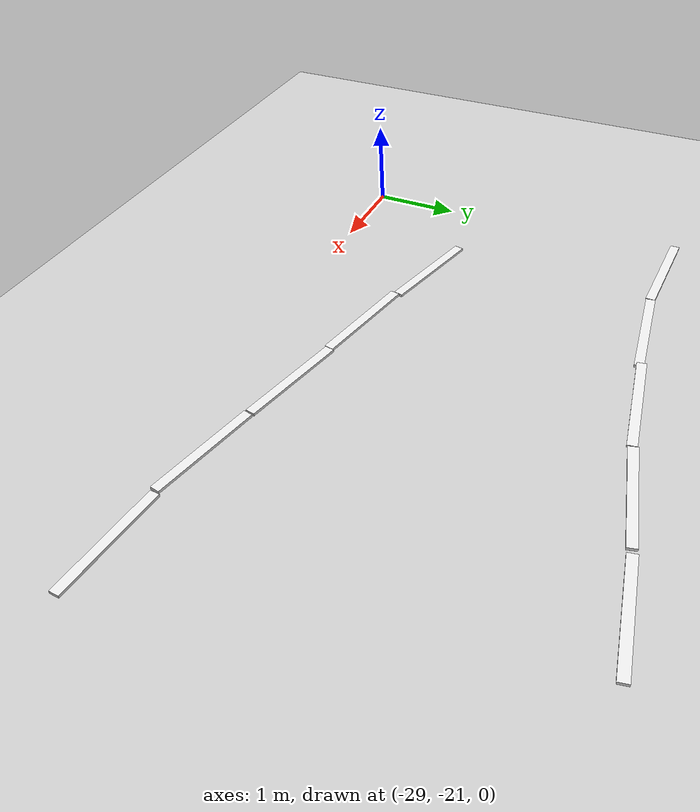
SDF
<sdf version="1.7">
 <world name="default">
  <model name="ground_plane">
   <static>1</static>
   <link name="link">
    <collision name="collision">
     <geometry><plane><normal>0 0 1</normal><size>100 100</size></plane></geometry>
     <surface><friction><ode><mu>100</mu><mu2>50</mu2></ode></friction></surface>
    </collision>
    <visual name="visual">
     <cast_shadows>0</cast_shadows>
     <geometry><plane><normal>0 0 1</normal><size>100 100</size></plane></geometry>
     <material>
      <script><uri>file://media/materials/scripts/gazebo.material</uri><name>Gazebo/Grey</name></script>
     </material>
    </visual>
   </link>
  </model>
  <model name="road_way_0_clone_0_clone_clone_0_clone_clone_clone_clone_clone_clone_clone_clone_0_clone_clone_0">
   <link name="link">
    <inertial>
     <mass>1</mass>
     <inertia>
      <ixx>0.166667</ixx>
      <ixy>0</ixy>
      <ixz>0</ixz>
      <iyy>0.166667</iyy>
      <iyz>0</iyz>
      <izz>0.166667</izz>
     </inertia>
    </inertial>
    <visual name="visual">
     <geometry><box><size>0.106644 1.22348 0.03129</size></box></geometry>
     <material>
      <script><name>Gazebo/White</name><uri>file://media/materials/scripts/gazebo.material</uri></script>
      <shader type="pixel"><normal_map>__default__</normal_map></shader>
      <ambient>1 1 1 1</ambient>
      <diffuse>1 1 1 1</diffuse>
      <specular>0 0 0 1</specular>
      <emissive>0 0 0 1</emissive>
     </material>
    </visual>
    <collision name="collision">
     <geometry><box><size>0.10644 1.22348 0.03129</size></box></geometry>
     <surface>
      <friction>
       <ode><mu>1</mu><mu2>1</mu2><fdir1>0 0 0</fdir1><slip1>0</slip1><slip2>0</slip2></ode>
       <torsional>
        <coefficient>1</coefficient>
        <patch_radius>0</patch_radius>
        <surface_radius>0</surface_radius>
        <use_patch_radius>1</use_patch_radius>
        <ode><slip>0</slip></ode>
       </torsional>
      </friction>
      <bounce><restitution_coefficient>0</restitution_coefficient><threshold>1e+06</threshold></bounce>
      <contact>
       <collide_without_contact>0</collide_without_contact>
       <collide_without_contact_bitmask>1</collide_without_contact_bitmask>
       <collide_bitmask>1</collide_bitmask>
       <ode>
        <soft_cfm>0</soft_cfm>
        <soft_erp>0.2</soft_erp>
        <kp>1e+13</kp>
        <kd>1</kd>
        <max_vel>0.01</max_vel>
        <min_depth>0</min_depth>
       </ode>
       <bullet>
        <split_impulse>1</split_impulse>
        <split_impulse_penetration_threshold>-0.01</split_impulse_penetration_threshold>
        <soft_cfm>0</soft_cfm>
        <soft_erp>0.2</soft_erp>
        <kp>1e+13</kp>
        <kd>1</kd>
       </bullet>
      </contact>
     </surface>
    </collision>
   </link>
   <static>0</static>
   <pose>-28.6161 -17.1248 0.015532 0.000274 2.4e-05 1.53008</pose>
  </model>
  <model name="road_way_0_clone_0_clone_clone_0_clone_clone_clone_clone_clone_clone_clone_clone_0_clone_clone_0_clone_clone">
   <link name="link">
    <inertial>
     <mass>1</mass>
     <inertia>
      <ixx>0.166667</ixx>
      <ixy>0</ixy>
      <ixz>0</ixz>
      <iyy>0.166667</iyy>
      <iyz>0</iyz>
      <izz>0.166667</izz>
     </inertia>
    </inertial>
    <visual name="visual">
     <geometry><box><size>0.106644 1.22348 0.03129</size></box></geometry>
     <material>
      <script><name>Gazebo/White</name><uri>file://media/materials/scripts/gazebo.material</uri></script>
      <shader type="pixel"><normal_map>__default__</normal_map></shader>
      <ambient>1 1 1 1</ambient>
      <diffuse>1 1 1 1</diffuse>
      <specular>0 0 0 1</specular>
      <emissive>0 0 0 1</emissive>
     </material>
    </visual>
    <collision name="collision">
     <geometry><box><size>0.10644 1.22348 0.03129</size></box></geometry>
     <surface>
      <friction>
       <ode><mu>1</mu><mu2>1</mu2><fdir1>0 0 0</fdir1><slip1>0</slip1><slip2>0</slip2></ode>
       <torsional>
        <coefficient>1</coefficient>
        <patch_radius>0</patch_radius>
        <surface_radius>0</surface_radius>
        <use_patch_radius>1</use_patch_radius>
        <ode><slip>0</slip></ode>
       </torsional>
      </friction>
      <bounce><restitution_coefficient>0</restitution_coefficient><threshold>1e+06</threshold></bounce>
      <contact>
       <collide_without_contact>0</collide_without_contact>
       <collide_without_contact_bitmask>1</collide_without_contact_bitmask>
       <collide_bitmask>1</collide_bitmask>
       <ode>
        <soft_cfm>0</soft_cfm>
        <soft_erp>0.2</soft_erp>
        <kp>1e+13</kp>
        <kd>1</kd>
        <max_vel>0.01</max_vel>
        <min_depth>0</min_depth>
       </ode>
       <bullet>
        <split_impulse>1</split_impulse>
        <split_impulse_penetration_threshold>-0.01</split_impulse_penetration_threshold>
        <soft_cfm>0</soft_cfm>
        <soft_erp>0.2</soft_erp>
        <kp>1e+13</kp>
        <kd>1</kd>
       </bullet>
      </contact>
     </surface>
    </collision>
   </link>
   <static>0</static>
   <pose>-27.5876 -19.7271 0.015638 -1.1e-05 0 1.32352</pose>
  </model>
  <model name="road_way_0_clone_0_clone_clone_0_clone_clone_clone_clone_clone_clone_clone_clone_0_clone_clone_0_clone_0">
   <link name="link">
    <inertial>
     <mass>1</mass>
     <inertia>
      <ixx>0.166667</ixx>
      <ixy>0</ixy>
      <ixz>0</ixz>
      <iyy>0.166667</iyy>
      <iyz>0</iyz>
      <izz>0.166667</izz>
     </inertia>
    </inertial>
    <visual name="visual">
     <geometry><box><size>0.106644 1.22348 0.03129</size></box></geometry>
     <material>
      <script><name>Gazebo/White</name><uri>file://media/materials/scripts/gazebo.material</uri></script>
      <shader type="pixel"><normal_map>__default__</normal_map></shader>
      <ambient>1 1 1 1</ambient>
      <diffuse>1 1 1 1</diffuse>
      <specular>0 0 0 1</specular>
      <emissive>0 0 0 1</emissive>
     </material>
    </visual>
    <collision name="collision">
     <geometry><box><size>0.10644 1.22348 0.03129</size></box></geometry>
     <surface>
      <friction>
       <ode><mu>1</mu><mu2>1</mu2><fdir1>0 0 0</fdir1><slip1>0</slip1><slip2>0</slip2></ode>
       <torsional>
        <coefficient>1</coefficient>
        <patch_radius>0</patch_radius>
        <surface_radius>0</surface_radius>
        <use_patch_radius>1</use_patch_radius>
        <ode><slip>0</slip></ode>
       </torsional>
      </friction>
      <bounce><restitution_coefficient>0</restitution_coefficient><threshold>1e+06</threshold></bounce>
      <contact>
       <collide_without_contact>0</collide_without_contact>
       <collide_without_contact_bitmask>1</collide_without_contact_bitmask>
       <collide_bitmask>1</collide_bitmask>
       <ode>
        <soft_cfm>0</soft_cfm>
        <soft_erp>0.2</soft_erp>
        <kp>1e+13</kp>
        <kd>1</kd>
        <max_vel>0.01</max_vel>
        <min_depth>0</min_depth>
       </ode>
       <bullet>
        <split_impulse>1</split_impulse>
        <split_impulse_penetration_threshold>-0.01</split_impulse_penetration_threshold>
        <soft_cfm>0</soft_cfm>
        <soft_erp>0.2</soft_erp>
        <kp>1e+13</kp>
        <kd>1</kd>
       </bullet>
      </contact>
     </surface>
    </collision>
   </link>
   <static>0</static>
   <pose>-27.3894 -17.0768 0.015212 0.000976 8.5e-05 1.68193</pose>
  </model>
  <model name="road_way_0_clone_0_clone_clone_0_clone_clone_clone_clone_clone_clone_clone_clone_0_clone_clone_0_clone_0_clone">
   <link name="link">
    <inertial>
     <mass>1</mass>
     <inertia>
      <ixx>0.166667</ixx>
      <ixy>0</ixy>
      <ixz>0</ixz>
      <iyy>0.166667</iyy>
      <iyz>0</iyz>
      <izz>0.166667</izz>
     </inertia>
    </inertial>
    <visual name="visual">
     <geometry><box><size>0.106644 1.22348 0.03129</size></box></geometry>
     <material>
      <script><name>Gazebo/White</name><uri>file://media/materials/scripts/gazebo.material</uri></script>
      <shader type="pixel"><normal_map>__default__</normal_map></shader>
      <ambient>1 1 1 1</ambient>
      <diffuse>1 1 1 1</diffuse>
      <specular>0 0 0 1</specular>
      <emissive>0 0 0 1</emissive>
     </material>
    </visual>
    <collision name="collision">
     <geometry><box><size>0.10644 1.22348 0.03129</size></box></geometry>
     <surface>
      <friction>
       <ode><mu>1</mu><mu2>1</mu2><fdir1>0 0 0</fdir1><slip1>0</slip1><slip2>0</slip2></ode>
       <torsional>
        <coefficient>1</coefficient>
        <patch_radius>0</patch_radius>
        <surface_radius>0</surface_radius>
        <use_patch_radius>1</use_patch_radius>
        <ode><slip>0</slip></ode>
       </torsional>
      </friction>
      <bounce><restitution_coefficient>0</restitution_coefficient><threshold>1e+06</threshold></bounce>
      <contact>
       <collide_without_contact>0</collide_without_contact>
       <collide_without_contact_bitmask>1</collide_without_contact_bitmask>
       <collide_bitmask>1</collide_bitmask>
       <ode>
        <soft_cfm>0</soft_cfm>
        <soft_erp>0.2</soft_erp>
        <kp>1e+13</kp>
        <kd>1</kd>
        <max_vel>0.01</max_vel>
        <min_depth>0</min_depth>
       </ode>
       <bullet>
        <split_impulse>1</split_impulse>
        <split_impulse_penetration_threshold>-0.01</split_impulse_penetration_threshold>
        <soft_cfm>0</soft_cfm>
        <soft_erp>0.2</soft_erp>
        <kp>1e+13</kp>
        <kd>1</kd>
       </bullet>
      </contact>
     </surface>
    </collision>
   </link>
   <static>0</static>
   <pose>-26.1944 -16.8985 0.030971 0.025096 -1e-05 1.7166</pose>
  </model>
  <model name="road_way_0_clone_0_clone_clone_0_clone_clone_clone_clone_clone_clone_clone_clone_0_clone_clone_0_clone_clone_clone">
   <link name="link">
    <inertial>
     <mass>1</mass>
     <inertia>
      <ixx>0.166667</ixx>
      <ixy>0</ixy>
      <ixz>0</ixz>
      <iyy>0.166667</iyy>
      <iyz>0</iyz>
      <izz>0.166667</izz>
     </inertia>
    </inertial>
    <visual name="visual">
     <geometry><box><size>0.106644 1.22348 0.03129</size></box></geometry>
     <material>
      <script><name>Gazebo/White</name><uri>file://media/materials/scripts/gazebo.material</uri></script>
      <shader type="pixel"><normal_map>__default__</normal_map></shader>
      <ambient>1 1 1 1</ambient>
      <diffuse>1 1 1 1</diffuse>
      <specular>0 0 0 1</specular>
      <emissive>0 0 0 1</emissive>
     </material>
    </visual>
    <collision name="collision">
     <geometry><box><size>0.10644 1.22348 0.03129</size></box></geometry>
     <surface>
      <friction>
       <ode><mu>1</mu><mu2>1</mu2><fdir1>0 0 0</fdir1><slip1>0</slip1><slip2>0</slip2></ode>
       <torsional>
        <coefficient>1</coefficient>
        <patch_radius>0</patch_radius>
        <surface_radius>0</surface_radius>
        <use_patch_radius>1</use_patch_radius>
        <ode><slip>0</slip></ode>
       </torsional>
      </friction>
      <bounce><restitution_coefficient>0</restitution_coefficient><threshold>1e+06</threshold></bounce>
      <contact>
       <collide_without_contact>0</collide_without_contact>
       <collide_without_contact_bitmask>1</collide_without_contact_bitmask>
       <collide_bitmask>1</collide_bitmask>
       <ode>
        <soft_cfm>0</soft_cfm>
        <soft_erp>0.2</soft_erp>
        <kp>1e+13</kp>
        <kd>1</kd>
        <max_vel>0.01</max_vel>
        <min_depth>0</min_depth>
       </ode>
       <bullet>
        <split_impulse>1</split_impulse>
        <split_impulse_penetration_threshold>-0.01</split_impulse_penetration_threshold>
        <soft_cfm>0</soft_cfm>
        <soft_erp>0.2</soft_erp>
        <kp>1e+13</kp>
        <kd>1</kd>
       </bullet>
      </contact>
     </surface>
    </collision>
   </link>
   <static>0</static>
   <pose>-26.3998 -20.0375 0.015638 -1.1e-05 -0 1.37004</pose>
  </model>
  <model name="road_way_0_clone_0_clone_clone_0_clone_clone_clone_clone_clone_clone_clone_clone_0_clone_clone_0_clone_clone_clone_clone">
   <link name="link">
    <inertial>
     <mass>1</mass>
     <inertia>
      <ixx>0.166667</ixx>
      <ixy>0</ixy>
      <ixz>0</ixz>
      <iyy>0.166667</iyy>
      <iyz>0</iyz>
      <izz>0.166667</izz>
     </inertia>
    </inertial>
    <visual name="visual">
     <geometry><box><size>0.106644 1.22348 0.03129</size></box></geometry>
     <material>
      <script><name>Gazebo/White</name><uri>file://media/materials/scripts/gazebo.material</uri></script>
      <shader type="pixel"><normal_map>__default__</normal_map></shader>
      <ambient>1 1 1 1</ambient>
      <diffuse>1 1 1 1</diffuse>
      <specular>0 0 0 1</specular>
      <emissive>0 0 0 1</emissive>
     </material>
    </visual>
    <collision name="collision">
     <geometry><box><size>0.10644 1.22348 0.03129</size></box></geometry>
     <surface>
      <friction>
       <ode><mu>1</mu><mu2>1</mu2><fdir1>0 0 0</fdir1><slip1>0</slip1><slip2>0</slip2></ode>
       <torsional>
        <coefficient>1</coefficient>
        <patch_radius>0</patch_radius>
        <surface_radius>0</surface_radius>
        <use_patch_radius>1</use_patch_radius>
        <ode><slip>0</slip></ode>
       </torsional>
      </friction>
      <bounce><restitution_coefficient>0</restitution_coefficient><threshold>1e+06</threshold></bounce>
      <contact>
       <collide_without_contact>0</collide_without_contact>
       <collide_without_contact_bitmask>1</collide_without_contact_bitmask>
       <collide_bitmask>1</collide_bitmask>
       <ode>
        <soft_cfm>0</soft_cfm>
        <soft_erp>0.2</soft_erp>
        <kp>1e+13</kp>
        <kd>1</kd>
        <max_vel>0.01</max_vel>
        <min_depth>0</min_depth>
       </ode>
       <bullet>
        <split_impulse>1</split_impulse>
        <split_impulse_penetration_threshold>-0.01</split_impulse_penetration_threshold>
        <soft_cfm>0</soft_cfm>
        <soft_erp>0.2</soft_erp>
        <kp>1e+13</kp>
        <kd>1</kd>
       </bullet>
      </contact>
     </surface>
    </collision>
   </link>
   <static>0</static>
   <pose>-25.1965 -20.2771 0.015638 -1.1e-05 -0 1.35065</pose>
  </model>
  <model name="road_way_0_clone_0_clone_clone_0_clone_clone_clone_clone_clone_clone_clone_clone_0_clone_clone_0_clone_0_clone_clone">
   <link name="link">
    <inertial>
     <mass>1</mass>
     <inertia>
      <ixx>0.166667</ixx>
      <ixy>0</ixy>
      <ixz>0</ixz>
      <iyy>0.166667</iyy>
      <iyz>0</iyz>
      <izz>0.166667</izz>
     </inertia>
    </inertial>
    <visual name="visual">
     <geometry><box><size>0.106644 1.22348 0.03129</size></box></geometry>
     <material>
      <script><name>Gazebo/White</name><uri>file://media/materials/scripts/gazebo.material</uri></script>
      <shader type="pixel"><normal_map>__default__</normal_map></shader>
      <ambient>1 1 1 1</ambient>
      <diffuse>1 1 1 1</diffuse>
      <specular>0 0 0 1</specular>
      <emissive>0 0 0 1</emissive>
     </material>
    </visual>
    <collision name="collision">
     <geometry><box><size>0.10644 1.22348 0.03129</size></box></geometry>
     <surface>
      <friction>
       <ode><mu>1</mu><mu2>1</mu2><fdir1>0 0 0</fdir1><slip1>0</slip1><slip2>0</slip2></ode>
       <torsional>
        <coefficient>1</coefficient>
        <patch_radius>0</patch_radius>
        <surface_radius>0</surface_radius>
        <use_patch_radius>1</use_patch_radius>
        <ode><slip>0</slip></ode>
       </torsional>
      </friction>
      <bounce><restitution_coefficient>0</restitution_coefficient><threshold>1e+06</threshold></bounce>
      <contact>
       <collide_without_contact>0</collide_without_contact>
       <collide_without_contact_bitmask>1</collide_without_contact_bitmask>
       <collide_bitmask>1</collide_bitmask>
       <ode>
        <soft_cfm>0</soft_cfm>
        <soft_erp>0.2</soft_erp>
        <kp>1e+13</kp>
        <kd>1</kd>
        <max_vel>0.01</max_vel>
        <min_depth>0</min_depth>
       </ode>
       <bullet>
        <split_impulse>1</split_impulse>
        <split_impulse_penetration_threshold>-0.01</split_impulse_penetration_threshold>
        <soft_cfm>0</soft_cfm>
        <soft_erp>0.2</soft_erp>
        <kp>1e+13</kp>
        <kd>1</kd>
       </bullet>
      </contact>
     </surface>
    </collision>
   </link>
   <static>0</static>
   <pose>-24.9858 -16.6666 0.015638 -1.1e-05 -0 1.7867</pose>
  </model>
  <model name="road_way_0_clone_0_clone_clone_0_clone_clone_clone_clone_clone_clone_clone_clone_0_clone_clone_0_clone_clone_clone_clone_clone">
   <link name="link">
    <inertial>
     <mass>1</mass>
     <inertia>
      <ixx>0.166667</ixx>
      <ixy>0</ixy>
      <ixz>0</ixz>
      <iyy>0.166667</iyy>
      <iyz>0</iyz>
      <izz>0.166667</izz>
     </inertia>
    </inertial>
    <visual name="visual">
     <geometry><box><size>0.106644 1.22348 0.03129</size></box></geometry>
     <material>
      <script><name>Gazebo/White</name><uri>file://media/materials/scripts/gazebo.material</uri></script>
      <shader type="pixel"><normal_map>__default__</normal_map></shader>
      <ambient>1 1 1 1</ambient>
      <diffuse>1 1 1 1</diffuse>
      <specular>0 0 0 1</specular>
      <emissive>0 0 0 1</emissive>
     </material>
    </visual>
    <collision name="collision">
     <geometry><box><size>0.10644 1.22348 0.03129</size></box></geometry>
     <surface>
      <friction>
       <ode><mu>1</mu><mu2>1</mu2><fdir1>0 0 0</fdir1><slip1>0</slip1><slip2>0</slip2></ode>
       <torsional>
        <coefficient>1</coefficient>
        <patch_radius>0</patch_radius>
        <surface_radius>0</surface_radius>
        <use_patch_radius>1</use_patch_radius>
        <ode><slip>0</slip></ode>
       </torsional>
      </friction>
      <bounce><restitution_coefficient>0</restitution_coefficient><threshold>1e+06</threshold></bounce>
      <contact>
       <collide_without_contact>0</collide_without_contact>
       <collide_without_contact_bitmask>1</collide_without_contact_bitmask>
       <collide_bitmask>1</collide_bitmask>
       <ode>
        <soft_cfm>0</soft_cfm>
        <soft_erp>0.2</soft_erp>
        <kp>1e+13</kp>
        <kd>1</kd>
        <max_vel>0.01</max_vel>
        <min_depth>0</min_depth>
       </ode>
       <bullet>
        <split_impulse>1</split_impulse>
        <split_impulse_penetration_threshold>-0.01</split_impulse_penetration_threshold>
        <soft_cfm>0</soft_cfm>
        <soft_erp>0.2</soft_erp>
        <kp>1e+13</kp>
        <kd>1</kd>
       </bullet>
      </contact>
     </surface>
    </collision>
   </link>
   <static>0</static>
   <pose>-23.9861 -20.5458 0.015638 -1.1e-05 0 1.36378</pose>
  </model>
  <model name="road_way_0_clone_0_clone_clone_0_clone_clone_clone_clone_clone_clone_clone_clone_0_clone_clone_0_clone_0_clone_clone_clone">
   <link name="link">
    <inertial>
     <mass>1</mass>
     <inertia>
      <ixx>0.166667</ixx>
      <ixy>0</ixy>
      <ixz>0</ixz>
      <iyy>0.166667</iyy>
      <iyz>0</iyz>
      <izz>0.166667</izz>
     </inertia>
    </inertial>
    <visual name="visual">
     <geometry><box><size>0.106644 1.22348 0.03129</size></box></geometry>
     <material>
      <script><name>Gazebo/White</name><uri>file://media/materials/scripts/gazebo.material</uri></script>
      <shader type="pixel"><normal_map>__default__</normal_map></shader>
      <ambient>1 1 1 1</ambient>
      <diffuse>1 1 1 1</diffuse>
      <specular>0 0 0 1</specular>
      <emissive>0 0 0 1</emissive>
     </material>
    </visual>
    <collision name="collision">
     <geometry><box><size>0.10644 1.22348 0.03129</size></box></geometry>
     <surface>
      <friction>
       <ode><mu>1</mu><mu2>1</mu2><fdir1>0 0 0</fdir1><slip1>0</slip1><slip2>0</slip2></ode>
       <torsional>
        <coefficient>1</coefficient>
        <patch_radius>0</patch_radius>
        <surface_radius>0</surface_radius>
        <use_patch_radius>1</use_patch_radius>
        <ode><slip>0</slip></ode>
       </torsional>
      </friction>
      <bounce><restitution_coefficient>0</restitution_coefficient><threshold>1e+06</threshold></bounce>
      <contact>
       <collide_without_contact>0</collide_without_contact>
       <collide_without_contact_bitmask>1</collide_without_contact_bitmask>
       <collide_bitmask>1</collide_bitmask>
       <ode>
        <soft_cfm>0</soft_cfm>
        <soft_erp>0.2</soft_erp>
        <kp>1e+13</kp>
        <kd>1</kd>
        <max_vel>0.01</max_vel>
        <min_depth>0</min_depth>
       </ode>
       <bullet>
        <split_impulse>1</split_impulse>
        <split_impulse_penetration_threshold>-0.01</split_impulse_penetration_threshold>
        <soft_cfm>0</soft_cfm>
        <soft_erp>0.2</soft_erp>
        <kp>1e+13</kp>
        <kd>1</kd>
       </bullet>
      </contact>
     </surface>
    </collision>
   </link>
   <static>0</static>
   <pose>-23.7357 -16.4178 0.015638 1.1e-05 -0 1.73991</pose>
  </model>
  <model name="road_way_0_clone_0_clone_clone_0_clone_clone_clone_clone_clone_clone_clone_clone_0_clone_clone_0_clone_clone_clone_clone_clone_clone">
   <link name="link">
    <inertial>
     <mass>1</mass>
     <inertia>
      <ixx>0.166667</ixx>
      <ixy>0</ixy>
      <ixz>0</ixz>
      <iyy>0.166667</iyy>
      <iyz>0</iyz>
      <izz>0.166667</izz>
     </inertia>
    </inertial>
    <visual name="visual">
     <geometry><box><size>0.106644 1.22348 0.03129</size></box></geometry>
     <material>
      <script><name>Gazebo/White</name><uri>file://media/materials/scripts/gazebo.material</uri></script>
      <shader type="pixel"><normal_map>__default__</normal_map></shader>
      <ambient>1 1 1 1</ambient>
      <diffuse>1 1 1 1</diffuse>
      <specular>0 0 0 1</specular>
      <emissive>0 0 0 1</emissive>
     </material>
    </visual>
    <collision name="collision">
     <geometry><box><size>0.10644 1.22348 0.03129</size></box></geometry>
     <surface>
      <friction>
       <ode><mu>1</mu><mu2>1</mu2><fdir1>0 0 0</fdir1><slip1>0</slip1><slip2>0</slip2></ode>
       <torsional>
        <coefficient>1</coefficient>
        <patch_radius>0</patch_radius>
        <surface_radius>0</surface_radius>
        <use_patch_radius>1</use_patch_radius>
        <ode><slip>0</slip></ode>
       </torsional>
      </friction>
      <bounce><restitution_coefficient>0</restitution_coefficient><threshold>1e+06</threshold></bounce>
      <contact>
       <collide_without_contact>0</collide_without_contact>
       <collide_without_contact_bitmask>1</collide_without_contact_bitmask>
       <collide_bitmask>1</collide_bitmask>
       <ode>
        <soft_cfm>0</soft_cfm>
        <soft_erp>0.2</soft_erp>
        <kp>1e+13</kp>
        <kd>1</kd>
        <max_vel>0.01</max_vel>
        <min_depth>0</min_depth>
       </ode>
       <bullet>
        <split_impulse>1</split_impulse>
        <split_impulse_penetration_threshold>-0.01</split_impulse_penetration_threshold>
        <soft_cfm>0</soft_cfm>
        <soft_erp>0.2</soft_erp>
        <kp>1e+13</kp>
        <kd>1</kd>
       </bullet>
      </contact>
     </surface>
    </collision>
   </link>
   <static>0</static>
   <pose>-22.7515 -20.697 0.015638 -1.1e-05 -0 1.48391</pose>
  </model>
 </world>
</sdf>
